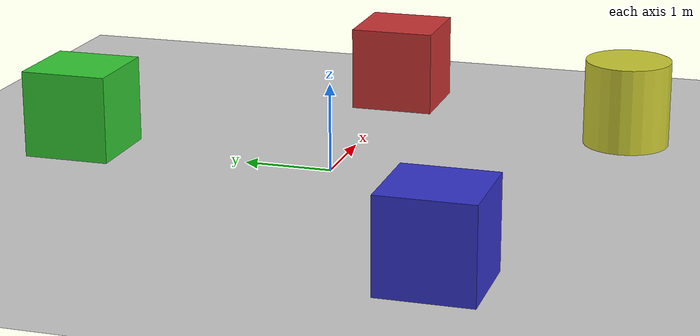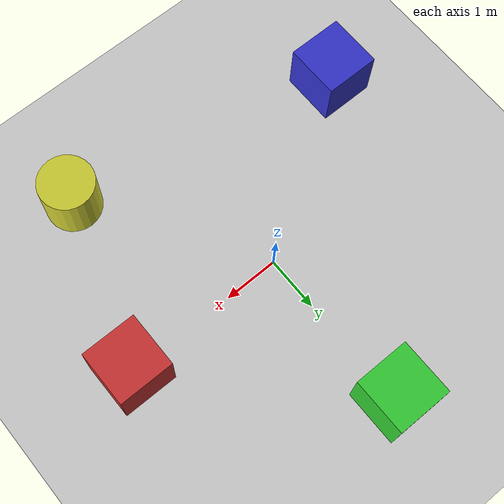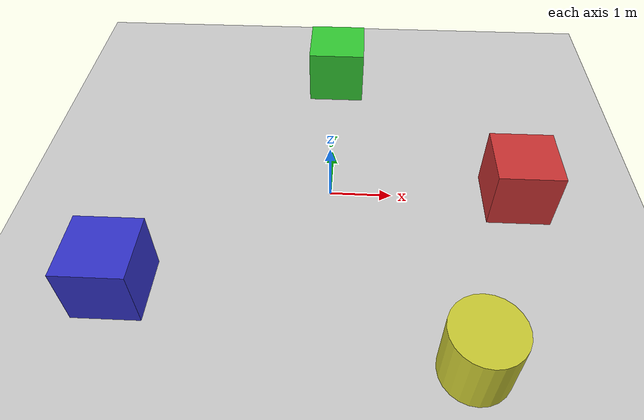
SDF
<sdf version="1.8">
 <world name="cybertruck_world">
  <physics name="1ms" type="ignored">
   <max_step_size>0.001</max_step_size>
   <real_time_factor>1.0</real_time_factor>
  </physics>
  <plugin filename="libignition-gazebo-physics-system.so" name="ignition::gazebo::systems::Physics"/>
  <plugin filename="libignition-gazebo-user-commands-system.so" name="ignition::gazebo::systems::UserCommands"/>
  <plugin filename="libignition-gazebo-scene-broadcaster-system.so" name="ignition::gazebo::systems::SceneBroadcaster"/>
  <plugin filename="libignition-gazebo-sensors-system.so" name="ignition::gazebo::systems::Sensors">
   <render_engine>ogre2</render_engine>
  </plugin>
  <plugin filename="libignition-gazebo-imu-system.so" name="ignition::gazebo::systems::Imu"/>
  <light type="directional" name="sun">
   <pose>0 0 10 0 0 0</pose>
   <diffuse>0.8 0.8 0.8 1</diffuse>
   <specular>0.2 0.2 0.2 1</specular>
   <attenuation>
    <range>1000</range>
    <constant>0.9</constant>
    <linear>0.01</linear>
    <quadratic>0.001</quadratic>
   </attenuation>
   <direction>-0.5 0.1 -0.9</direction>
  </light>
  <model name="ground_plane">
   <static>true</static>
   <link name="link">
    <collision name="collision"><geometry><plane><normal>0 0 1</normal></plane></geometry></collision>
    <visual name="visual">
     <geometry><plane><normal>0 0 1</normal><size>100 100</size></plane></geometry>
     <material>
      <ambient>0.8 0.8 0.8 1</ambient>
      <diffuse>0.8 0.8 0.8 1</diffuse>
      <specular>0.5 0.5 0.5 1</specular>
     </material>
    </visual>
   </link>
  </model>
  <model name="box_red">
   <static>true</static>
   <pose>3 0 0.5 0 0 0</pose>
   <link name="link">
    <collision name="collision"><geometry><box><size>1 1 1</size></box></geometry></collision>
    <visual name="visual">
     <geometry><box><size>1 1 1</size></box></geometry>
     <material><ambient>0.8 0.2 0.2 1</ambient><diffuse>0.8 0.2 0.2 1</diffuse></material>
    </visual>
   </link>
  </model>
  <model name="box_green">
   <static>true</static>
   <pose>0 3 0.5 0 0 0</pose>
   <link name="link">
    <collision name="collision"><geometry><box><size>1 1 1</size></box></geometry></collision>
    <visual name="visual">
     <geometry><box><size>1 1 1</size></box></geometry>
     <material><ambient>0.2 0.8 0.2 1</ambient><diffuse>0.2 0.8 0.2 1</diffuse></material>
    </visual>
   </link>
  </model>
  <model name="box_blue">
   <static>true</static>
   <pose>-3 -2 0.5 0 0 0</pose>
   <link name="link">
    <collision name="collision"><geometry><box><size>1 1 1</size></box></geometry></collision>
    <visual name="visual">
     <geometry><box><size>1 1 1</size></box></geometry>
     <material><ambient>0.2 0.2 0.8 1</ambient><diffuse>0.2 0.2 0.8 1</diffuse></material>
    </visual>
   </link>
  </model>
  <model name="cylinder_yellow">
   <static>true</static>
   <pose>2 -3 0.5 0 0 0</pose>
   <link name="link">
    <collision name="collision">
     <geometry><cylinder><radius>0.5</radius><length>1</length></cylinder></geometry>
    </collision>
    <visual name="visual">
     <geometry><cylinder><radius>0.5</radius><length>1</length></cylinder></geometry>
     <material><ambient>0.8 0.8 0.2 1</ambient><diffuse>0.8 0.8 0.2 1</diffuse></material>
    </visual>
   </link>
  </model>
 </world>
</sdf>
